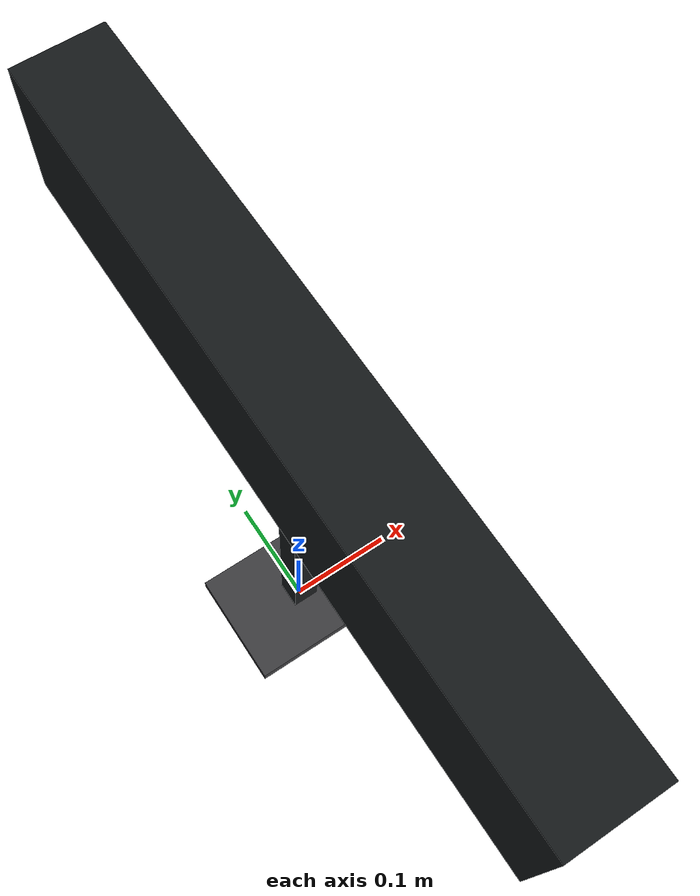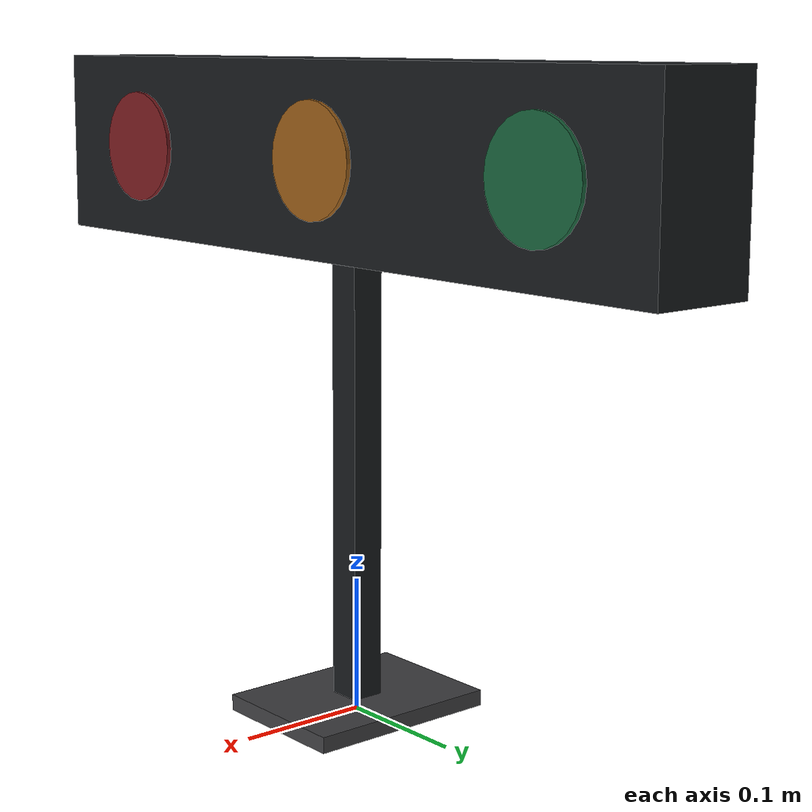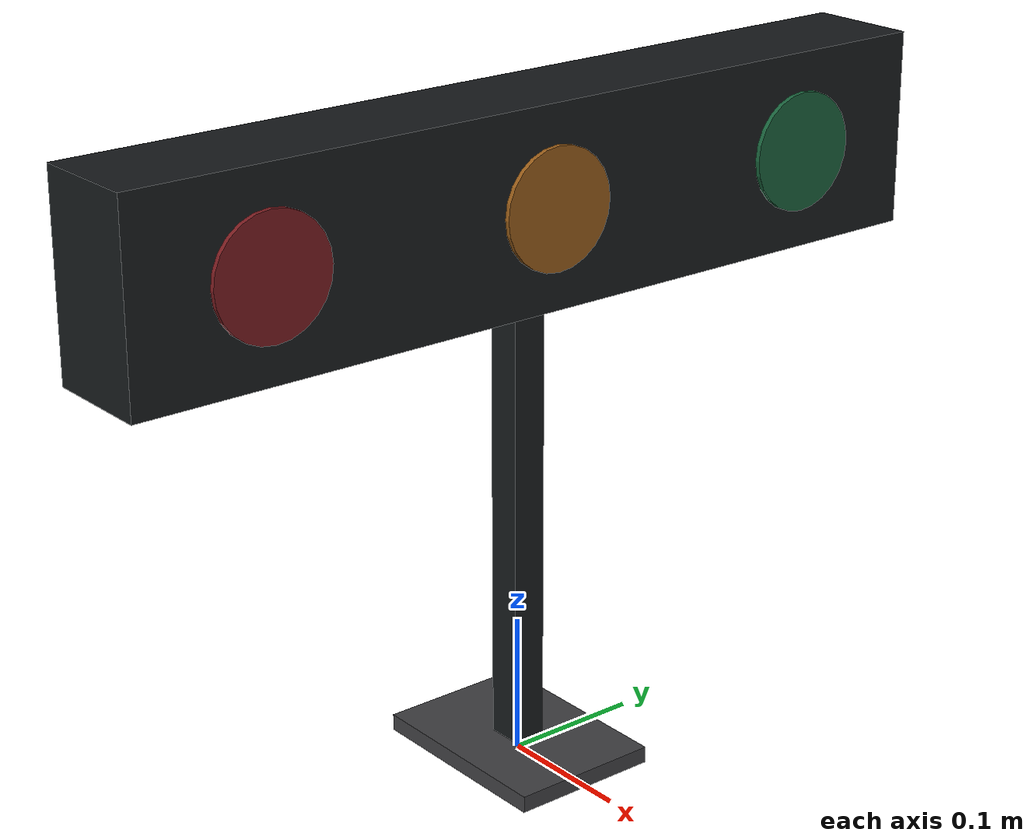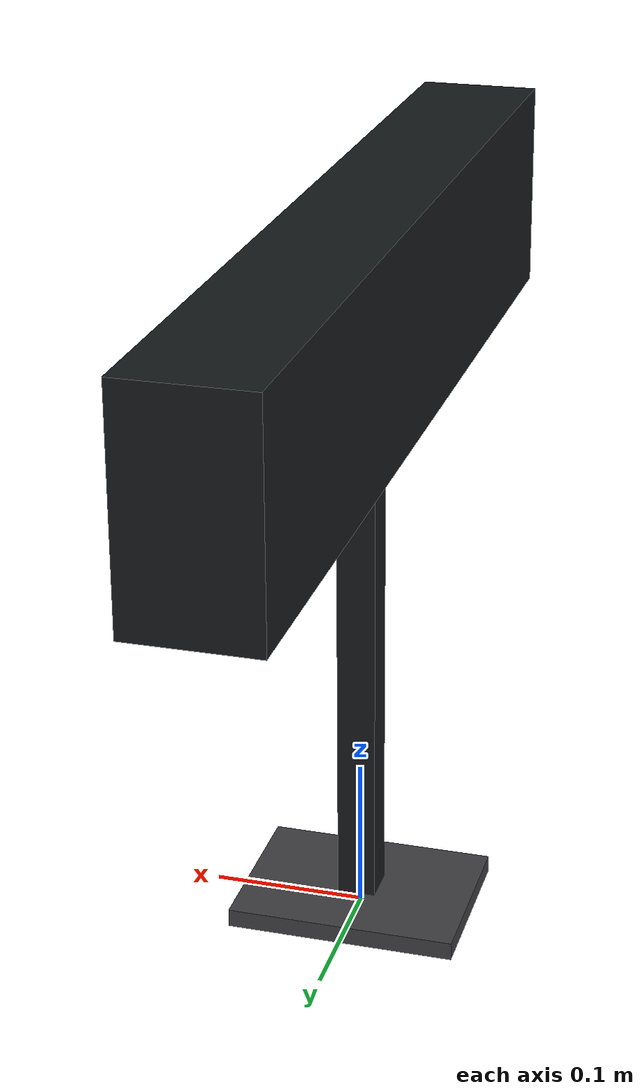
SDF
<?xml version="1.0"?>
<sdf version="1.7">
  <model name="traffic_light_h_single">
    <!-- 按官方尺寸生成, 见 tools/setup_traffic_lights.py 顶部说明 -->
    <static>false</static>
    <self_collide>false</self_collide>
    <link name="base">
      <inertial><pose>0 0 0.410 0 0 0</pose><mass>4</mass><inertia><ixx>0.009</ixx><ixy>0</ixy><ixz>0</ixz><iyy>0.139</iyy><iyz>0</iyz><izz>0.143</izz></inertia></inertial>
      <visual name="housing"><pose>0 0 0.410 0 0 0</pose><geometry><box><size>0.080 0.640 0.140</size></box></geometry><material><ambient>0.090 0.102 0.110 1.00</ambient><diffuse>0.090 0.102 0.110 1.00</diffuse></material></visual>
      <collision name="housing_c"><pose>0 0 0.410 0 0 0</pose><geometry><box><size>0.080 0.640 0.140</size></box></geometry></collision>
      <visual name="post0"><pose>0 0.000 0.170 0 0 0</pose><geometry><box><size>0.025 0.025 0.340</size></box></geometry><material><ambient>0.090 0.102 0.110 1.00</ambient><diffuse>0.090 0.102 0.110 1.00</diffuse></material></visual>
      <collision name="post0_c"><pose>0 0.000 0.170 0 0 0</pose><geometry><box><size>0.025 0.025 0.340</size></box></geometry></collision>
      <visual name="foot0"><pose>0 0.000 0.006 0 0 0</pose><geometry><box><size>0.150 0.110 0.012</size></box></geometry><material><ambient>0.25 0.25 0.26 1</ambient><diffuse>0.25 0.25 0.26 1</diffuse></material></visual>
      <collision name="foot0_c"><pose>0 0.000 0.006 0 0 0</pose><geometry><box><size>0.150 0.110 0.012</size></box></geometry></collision>
      <visual name="lens_red"><pose>0.0405 -0.220 0.410 0 1.5708 0</pose><geometry><cylinder><radius>0.0425</radius><length>0.0060</length></cylinder></geometry><material><ambient>0.467 0.106 0.122 1.00</ambient><diffuse>0.467 0.106 0.122 1.00</diffuse></material></visual>
      <visual name="lens_yellow"><pose>0.0405 0.000 0.410 0 1.5708 0</pose><geometry><cylinder><radius>0.0425</radius><length>0.0060</length></cylinder></geometry><material><ambient>0.588 0.357 0.094 1.00</ambient><diffuse>0.588 0.357 0.094 1.00</diffuse></material></visual>
      <visual name="lens_green"><pose>0.0405 0.220 0.410 0 1.5708 0</pose><geometry><cylinder><radius>0.0425</radius><length>0.0060</length></cylinder></geometry><material><ambient>0.094 0.376 0.227 1.00</ambient><diffuse>0.094 0.376 0.227 1.00</diffuse></material></visual>
    </link>
    <link name="lamp_red"><gravity>false</gravity><pose>0.0000 -0.220 0.410 0 0 0</pose><inertial><mass>0.02</mass><inertia><ixx>1e-5</ixx><ixy>0</ixy><ixz>0</ixz><iyy>1e-5</iyy><iyz>0</iyz><izz>1e-5</izz></inertia></inertial><visual name="lamp"><pose>0 0 0 0 1.5708 0</pose><geometry><cylinder><radius>0.0425</radius><length>0.0080</length></cylinder></geometry><material><ambient>0.969 0.227 0.086 1.00</ambient><diffuse>0.969 0.227 0.086 1.00</diffuse><emissive>0.969 0.227 0.086 1.00</emissive></material></visual></link>
    <joint name="j_red" type="prismatic"><parent>base</parent><child>lamp_red</child><pose>0 0 0 0 0 0</pose><axis><xyz>1 0 0</xyz><limit><lower>0.000</lower><upper>0.055</upper><effort>1</effort><velocity>1</velocity></limit></axis></joint>
    <link name="lamp_yellow"><gravity>false</gravity><pose>0.0000 0.000 0.410 0 0 0</pose><inertial><mass>0.02</mass><inertia><ixx>1e-5</ixx><ixy>0</ixy><ixz>0</ixz><iyy>1e-5</iyy><iyz>0</iyz><izz>1e-5</izz></inertia></inertial><visual name="lamp"><pose>0 0 0 0 1.5708 0</pose><geometry><cylinder><radius>0.0425</radius><length>0.0080</length></cylinder></geometry><material><ambient>0.988 0.976 0.188 1.00</ambient><diffuse>0.988 0.976 0.188 1.00</diffuse><emissive>0.988 0.976 0.188 1.00</emissive></material></visual></link>
    <joint name="j_yellow" type="prismatic"><parent>base</parent><child>lamp_yellow</child><pose>0 0 0 0 0 0</pose><axis><xyz>1 0 0</xyz><limit><lower>0.000</lower><upper>0.055</upper><effort>1</effort><velocity>1</velocity></limit></axis></joint>
    <link name="lamp_green"><gravity>false</gravity><pose>0.0000 0.220 0.410 0 0 0</pose><inertial><mass>0.02</mass><inertia><ixx>1e-5</ixx><ixy>0</ixy><ixz>0</ixz><iyy>1e-5</iyy><iyz>0</iyz><izz>1e-5</izz></inertia></inertial><visual name="lamp"><pose>0 0 0 0 1.5708 0</pose><geometry><cylinder><radius>0.0425</radius><length>0.0080</length></cylinder></geometry><material><ambient>0.086 0.941 0.529 1.00</ambient><diffuse>0.086 0.941 0.529 1.00</diffuse><emissive>0.086 0.941 0.529 1.00</emissive></material></visual></link>
    <joint name="j_green" type="prismatic"><parent>base</parent><child>lamp_green</child><pose>0 0 0 0 0 0</pose><axis><xyz>1 0 0</xyz><limit><lower>0.000</lower><upper>0.055</upper><effort>1</effort><velocity>1</velocity></limit></axis></joint>
  </model>
</sdf>
